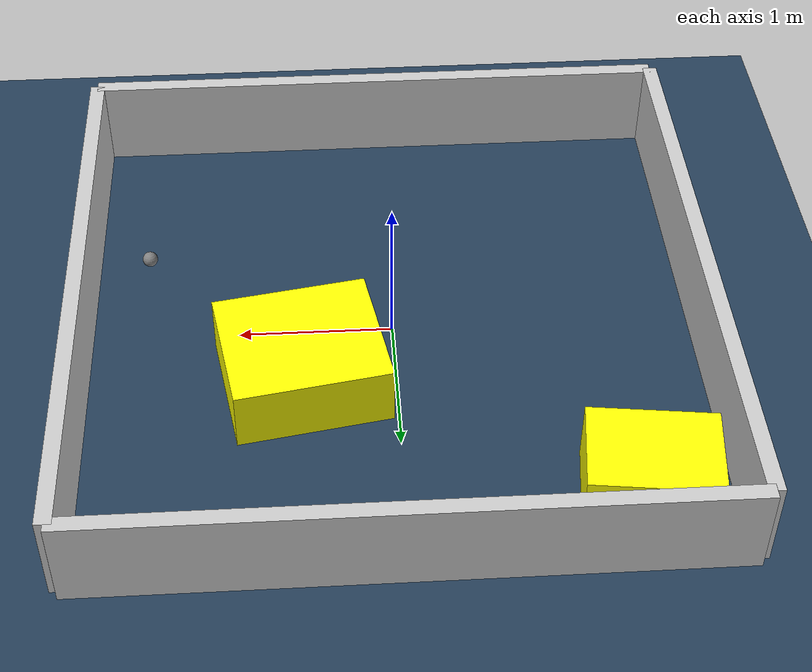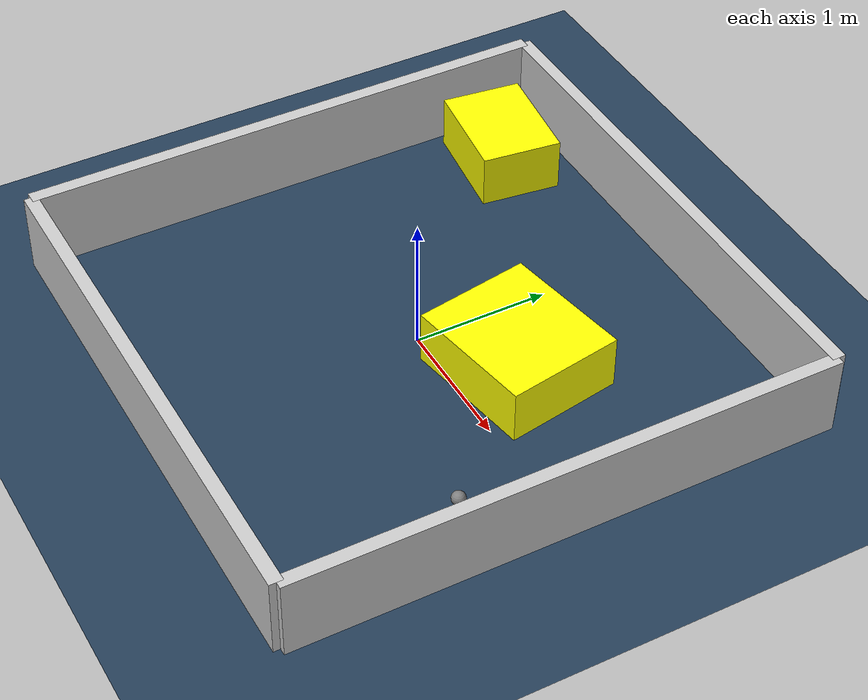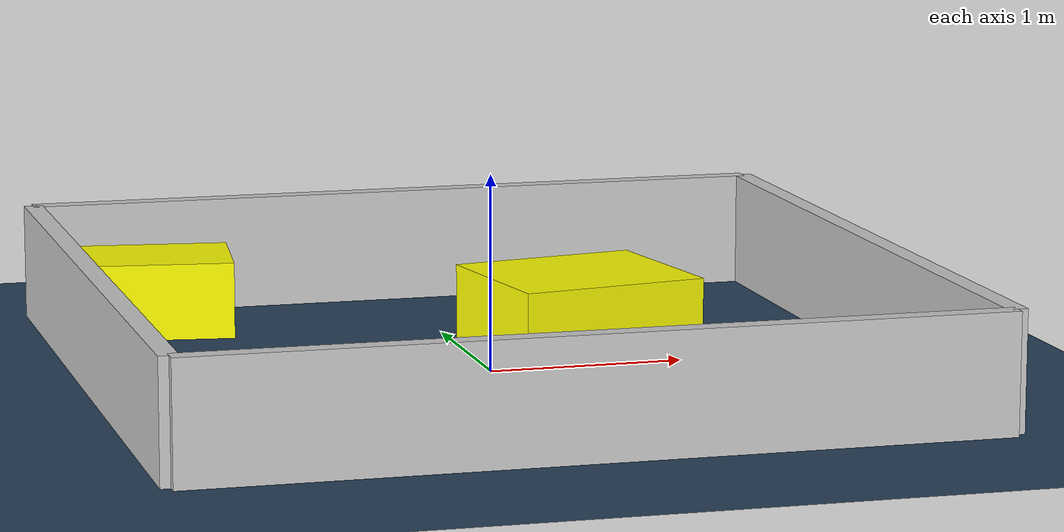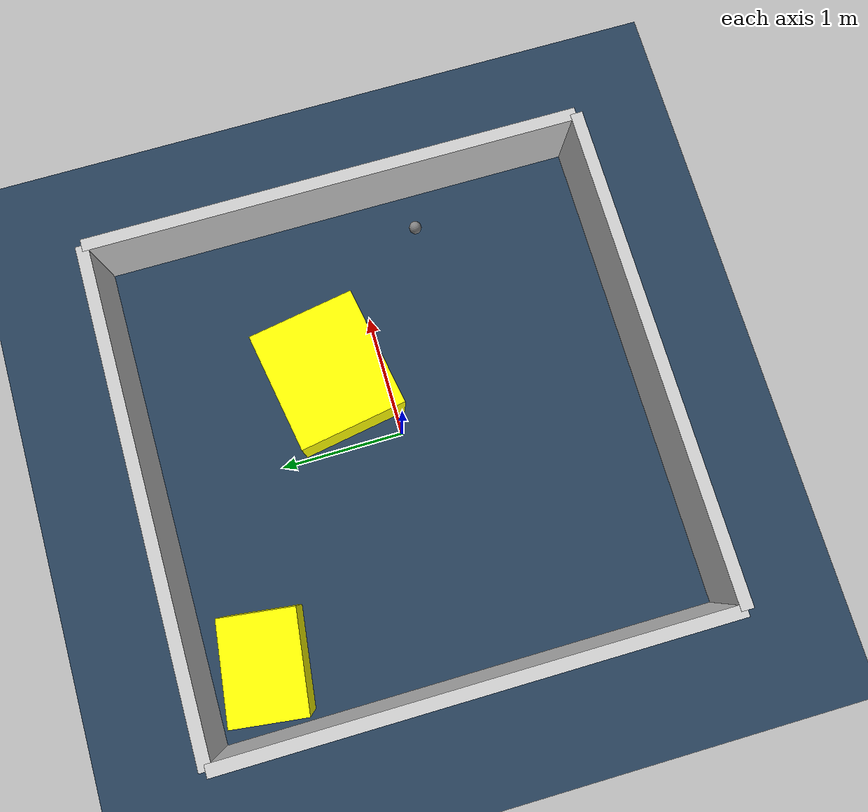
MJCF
<?xml version="1.0" ?>
<mujoco model="generated_environment">
  <option timestep="0.01" integrator="RK4" cone="elliptic"/>
  <default>
    <geom density="1"/>
  </default>
  <asset>
    <texture builtin="gradient" height="3072" rgb1="0.3 0.5 0.7" rgb2="0 0 0" type="skybox" width="512"/>
    <texture builtin="checker" height="300" mark="edge" markrgb="0.8 0.8 0.8" name="groundplane" rgb1="0.2 0.3 0.4" rgb2="0.1 0.2 0.3" type="2d" width="300"/>
    <material name="groundplane" reflectance="0.2" texrepeat="5 5" texture="groundplane" texuniform="true"/>
    <material name="robot" rgba="0.0 1.0 0.0 1"/>
  </asset>
  <worldbody>
    <light dir="0 0 -1" directional="true" pos="0 0 1.5"/>
    <geom condim="4" friction="1.0 0.005 0.001" material="groundplane" name="floor" size="0 0 0.05" type="plane"/>
    <body name="walls">
      <geom name="wall_1" condim="4" pos="-2.0 0.0 0.3" rgba="0.800000011920929 0.800000011920929 0.800000011920929 1.0" size="0.05 2.0 0.3" type="box"/>
      <geom name="wall_2" condim="4" pos="2.0 0.0 0.3" rgba="0.800000011920929 0.800000011920929 0.800000011920929 1.0" size="0.05 2.0 0.3" type="box"/>
      <geom name="wall_3" condim="4" pos="0.0 -2.0 0.3" rgba="0.800000011920929 0.800000011920929 0.800000011920929 1.0" size="2.0 0.05 0.3" type="box"/>
      <geom name="wall_4" condim="4" pos="0.0 2.0 0.3" rgba="0.800000011920929 0.800000011920929 0.800000011920929 1.0" size="2.0 0.05 0.3" type="box"/>
    </body>
    <body name="robot">
      <joint name="joint_x" type="slide" pos="0 0 0" axis="1 0 0"/>
      <joint name="joint_y" type="slide" pos="0 0 0" axis="0 1 0"/>
      <geom name="robot" type="sphere" pos="1.5918074533862452 -0.5642630371741868 0.2" size="0.05" mass="5." friction="1.0 0.005 0.0001" condim="4"/>
      <site name="sensor_ball"/>
    </body>
    <body name="obstacle_1_movable">
      <geom name="obstacle_1_movable" condim="4" pos="0.5901857891419247 0.4444222104850455 0.2" euler="0 0 99.75444708586576" friction="1.0 0.005 0.001" rgba="1 1 0 1" size="0.43767477324600046 0.49555089363613486 0.2" type="box" mass="0.1"/>
      <joint type="free"/>
    </body>
    <body name="obstacle_2_movable">
      <geom name="obstacle_2_movable" condim="4" pos="-1.440431717350726 1.4816395513001357 0.2" euler="0 0 352.85704018192155" friction="1.0 0.005 0.001" rgba="1 1 0 1" size="0.4000893116041022 0.3015170215601207 0.2" type="box" mass="0.1"/>
      <joint type="free"/>
    </body>
  </worldbody>
  <actuator>
    <motor name="actuator_x" joint="joint_x" gear="1" ctrlrange="-1 1"/>
    <motor name="actuator_y" joint="joint_y" gear="1" ctrlrange="-1 1"/>
  </actuator>
</mujoco>
